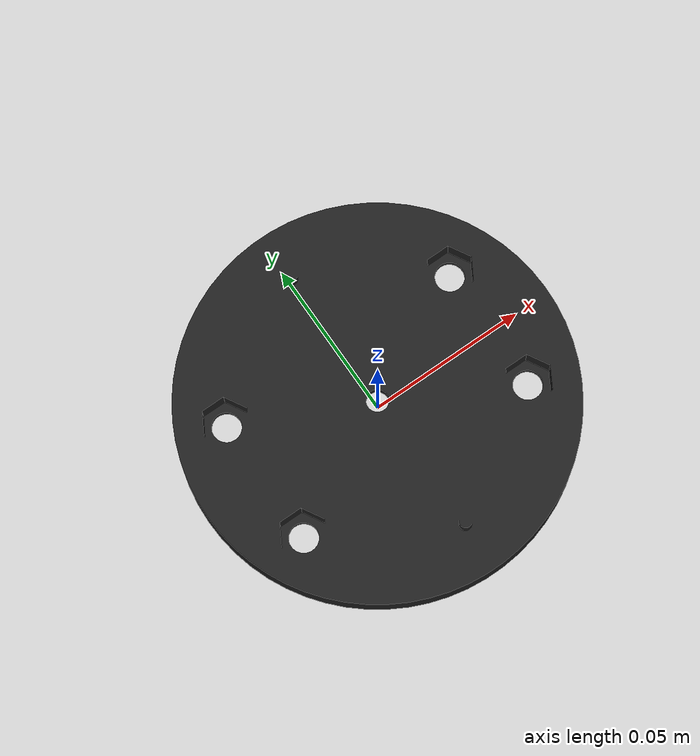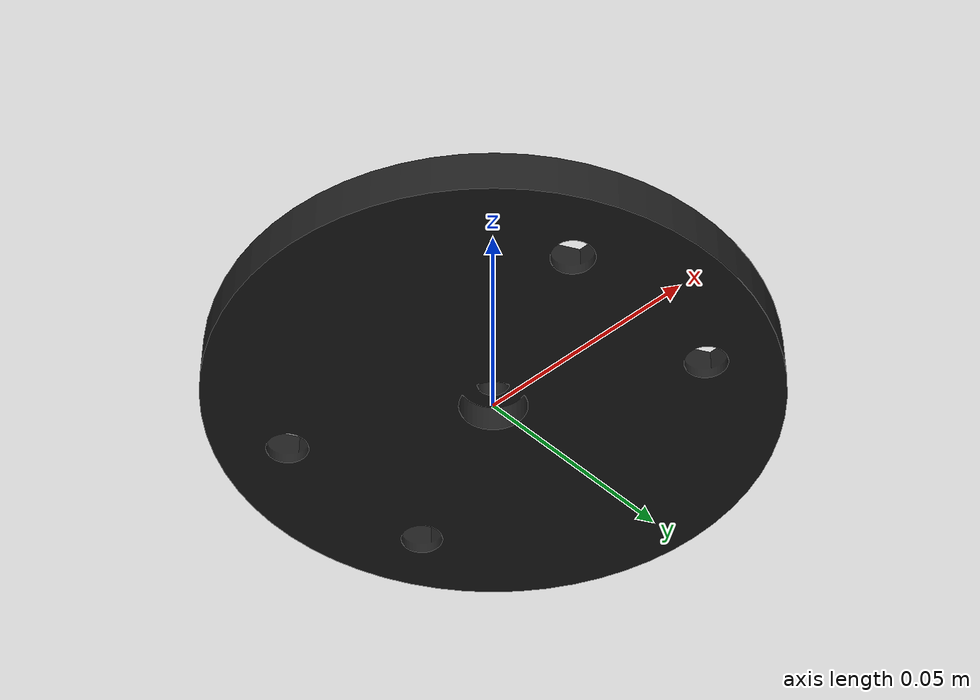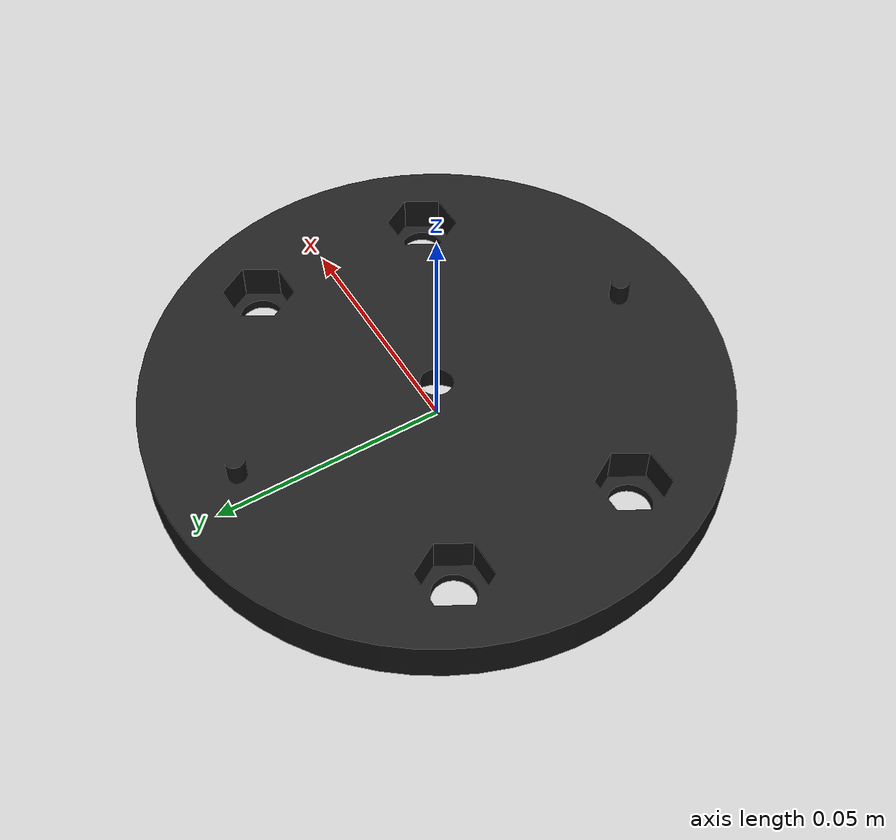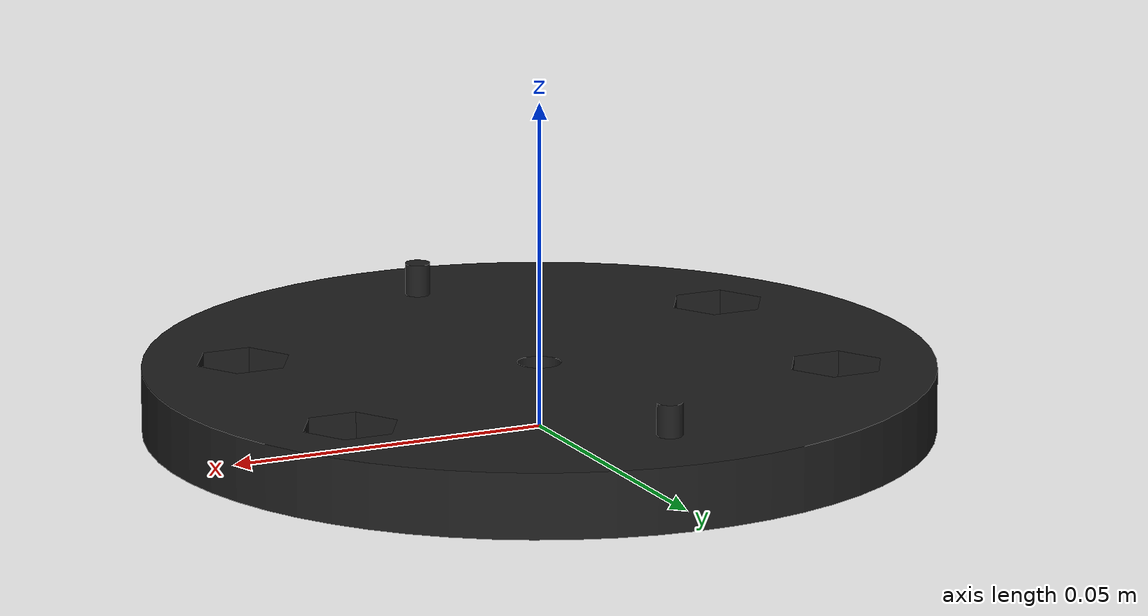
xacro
<?xml version="1.0"?>
<robot name="lidar_mount" xmlns:xacro="http://www.ros.org/wiki/xacro">

    <xacro:property name="mass" value="0.1" />

    <link name="lidar_mount_link">
        <visual>
            <geometry>
                <mesh filename="package://common_gazebo_models/meshes/lidar_mount/lidar_mount.dae" />
            </geometry>
        </visual>
        <collision>
            <origin xyz="0 0 0.2095" rpy="0 0 0" />
            <geometry>
                <box size="0.385 0.206 0.419" />
            </geometry>
        </collision>
    </link>

    <gazebo reference="lidar_mount_link">
        <material>Gazebo/Black</material>
    </gazebo>

    <link name="velodyne_mount_link" />

    <joint name="mount_to_velodyne_joint" type="fixed">
        <parent link="lidar_mount_link"></parent>
        <child link="velodyne_mount_link"></child>
        <origin xyz="0 0 0.1" rpy="0 0 0" />
    </joint>

</robot>
